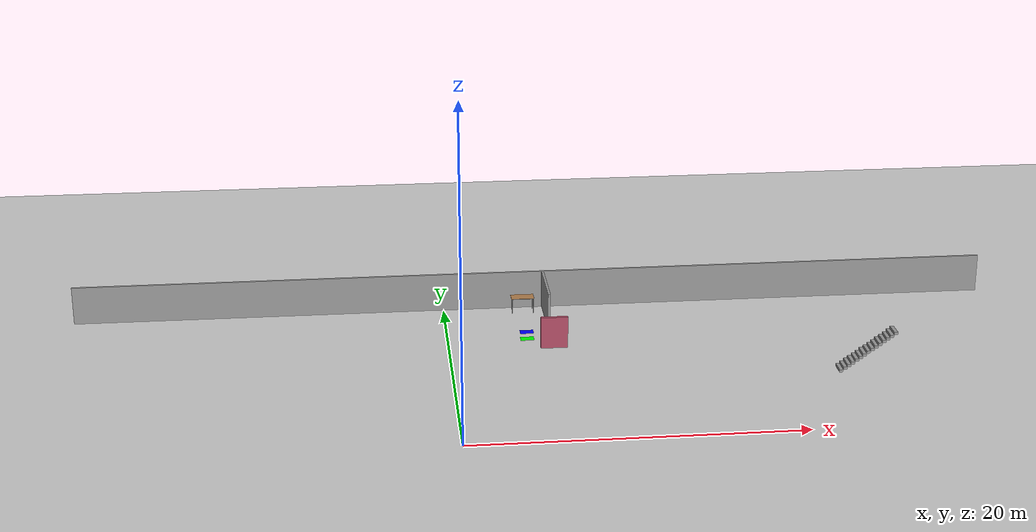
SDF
<sdf version="1.6">
 <world name="default">
  <model name="ground_plane">
   <pose>0 0 0.001 0 -0 0</pose>
   <static>1</static>
   <link name="link">
    <collision name="collision">
     <geometry><plane><normal>0 0 1</normal><size>100 100</size></plane></geometry>
     <surface><friction><ode><mu>100</mu><mu2>50</mu2></ode></friction></surface>
    </collision>
    <visual name="visual">
     <cast_shadows>0</cast_shadows>
     <geometry><plane><normal>0 0 1</normal><size>100 100</size></plane></geometry>
     <material>
      <script><uri>file://media/materials/scripts/gazebo.material</uri><name>Gazebo/Grey</name></script>
     </material>
    </visual>
   </link>
  </model>
  <model name="table_11">
   <static>1</static>
   <link name="link">
    <collision name="surface">
     <pose>0 0 1 0 -0 0</pose>
     <geometry><box><size>1.5 0.8 0.03</size></box></geometry>
     <surface><friction><ode><mu>0.6</mu><mu2>0.6</mu2></ode></friction></surface>
    </collision>
    <visual name="visual1">
     <pose>0 0 1 0 -0 0</pose>
     <geometry><box><size>1.5 0.8 0.03</size></box></geometry>
     <material>
      <script><uri>file://media/materials/scripts/gazebo.material</uri><name>Gazebo/Wood</name></script>
     </material>
    </visual>
    <collision name="front_left_leg">
     <pose>0.68 0.38 0.5 0 -0 0</pose>
     <geometry><cylinder><radius>0.02</radius><length>1</length></cylinder></geometry>
    </collision>
    <visual name="front_left_leg">
     <pose>0.68 0.38 0.5 0 -0 0</pose>
     <geometry><cylinder><radius>0.02</radius><length>1</length></cylinder></geometry>
     <material>
      <script><uri>file://media/materials/scripts/gazebo.material</uri><name>Gazebo/Grey</name></script>
     </material>
    </visual>
    <collision name="front_right_leg">
     <pose>0.68 -0.38 0.5 0 -0 0</pose>
     <geometry><cylinder><radius>0.02</radius><length>1</length></cylinder></geometry>
    </collision>
    <visual name="front_right_leg">
     <pose>0.68 -0.38 0.5 0 -0 0</pose>
     <geometry><cylinder><radius>0.02</radius><length>1</length></cylinder></geometry>
     <material>
      <script><uri>file://media/materials/scripts/gazebo.material</uri><name>Gazebo/Grey</name></script>
     </material>
    </visual>
    <collision name="back_right_leg">
     <pose>-0.68 -0.38 0.5 0 -0 0</pose>
     <geometry><cylinder><radius>0.02</radius><length>1</length></cylinder></geometry>
    </collision>
    <visual name="back_right_leg">
     <pose>-0.68 -0.38 0.5 0 -0 0</pose>
     <geometry><cylinder><radius>0.02</radius><length>1</length></cylinder></geometry>
     <material>
      <script><uri>file://media/materials/scripts/gazebo.material</uri><name>Gazebo/Grey</name></script>
     </material>
    </visual>
    <collision name="back_left_leg">
     <pose>-0.68 0.38 0.5 0 -0 0</pose>
     <geometry><cylinder><radius>0.02</radius><length>1</length></cylinder></geometry>
    </collision>
    <visual name="back_left_leg">
     <pose>-0.68 0.38 0.5 0 -0 0</pose>
     <geometry><cylinder><radius>0.02</radius><length>1</length></cylinder></geometry>
     <material>
      <script><uri>file://media/materials/scripts/gazebo.material</uri><name>Gazebo/Grey</name></script>
     </material>
    </visual>
   </link>
   <pose>5.18073 19.5521 0.001 0 -0 0</pose>
  </model>
  <model name="corridor_11">
   <link name="link">
    <pose>0 0 0.001 0 -0 0</pose>
    <inertial>
     <mass>0.0352517</mass>
     <inertia>
      <ixx>0.00099707</ixx>
      <ixy>0</ixy>
      <ixz>0</ixz>
      <iyy>0.00220147</iyy>
      <iyz>0</iyz>
      <izz>0.0031692</izz>
     </inertia>
     <pose>0 0 0.001 0 -0 0</pose>
    </inertial>
    <visual name="visual">
     <geometry><box><size>0.862743 0.578289 1e-06</size></box></geometry>
     <material>
      <script><name>Gazebo/Grey</name><uri>file://media/materials/scripts/gazebo.material</uri></script>
      <ambient>0 1 0 1</ambient>
      <diffuse>0 1 0 1</diffuse>
      <specular>0 1 0 1</specular>
      <emissive>0 1 0 1</emissive>
      <shader type="vertex"><normal_map>__default__</normal_map></shader>
     </material>
     <pose>0 0 0.001 0 -0 0</pose>
    </visual>
    <collision name="collision">
     <pose>0 0 0.001 0 -0 0</pose>
     <geometry><box><size>0.862743 0.578289 0.000477</size></box></geometry>
     <surface>
      <friction>
       <ode><mu>1</mu><mu2>1</mu2><fdir1>0 0 0</fdir1><slip1>0</slip1><slip2>0</slip2></ode>
       <torsional>
        <coefficient>1</coefficient>
        <patch_radius>0</patch_radius>
        <surface_radius>0</surface_radius>
        <use_patch_radius>1</use_patch_radius>
        <ode><slip>0</slip></ode>
       </torsional>
      </friction>
      <bounce><restitution_coefficient>0</restitution_coefficient><threshold>1e+06</threshold></bounce>
      <contact>
       <collide_without_contact>0</collide_without_contact>
       <collide_without_contact_bitmask>1</collide_without_contact_bitmask>
       <collide_bitmask>1</collide_bitmask>
       <ode>
        <soft_cfm>0</soft_cfm>
        <soft_erp>0.2</soft_erp>
        <kp>1e+13</kp>
        <kd>1</kd>
        <max_vel>0.01</max_vel>
        <min_depth>0</min_depth>
       </ode>
       <bullet>
        <split_impulse>1</split_impulse>
        <split_impulse_penetration_threshold>-0.01</split_impulse_penetration_threshold>
        <soft_cfm>0</soft_cfm>
        <soft_erp>0.2</soft_erp>
        <kp>1e+13</kp>
        <kd>1</kd>
       </bullet>
      </contact>
     </surface>
    </collision>
   </link>
   <static>1</static>
   <pose>5.04547 14.8469 0 0 -0 0</pose>
  </model>
  <model name="intersection_22">
   <link name="link">
    <pose>0 0 0.001 0 -0 0</pose>
    <inertial>
     <mass>0.0352517</mass>
     <inertia>
      <ixx>0.000997067</ixx>
      <ixy>0</ixy>
      <ixz>0</ixz>
      <iyy>0.00220147</iyy>
      <iyz>0</iyz>
      <izz>0.0031692</izz>
     </inertia>
     <pose>0 0 0.001 0 -0 0</pose>
    </inertial>
    <visual name="visual">
     <geometry><box><size>0.862743 0.578289 1e-06</size></box></geometry>
     <material>
      <script><name>Gazebo/Grey</name><uri>file://media/materials/scripts/gazebo.material</uri></script>
      <ambient>0 0 1 1</ambient>
      <diffuse>0 0 1 1</diffuse>
      <specular>0 0 1 1</specular>
      <emissive>0 0 1 1</emissive>
      <shader type="vertex"><normal_map>__default__</normal_map></shader>
     </material>
     <pose>0 0 0.001 0 -0 0</pose>
    </visual>
    <collision name="collision">
     <pose>0 0 0.001 0 -0 0</pose>
     <geometry><box><size>0.862743 0.578289 0.000477</size></box></geometry>
     <surface>
      <friction>
       <ode><mu>1</mu><mu2>1</mu2><fdir1>0 0 0</fdir1><slip1>0</slip1><slip2>0</slip2></ode>
       <torsional>
        <coefficient>1</coefficient>
        <patch_radius>0</patch_radius>
        <surface_radius>0</surface_radius>
        <use_patch_radius>1</use_patch_radius>
        <ode><slip>0</slip></ode>
       </torsional>
      </friction>
      <bounce><restitution_coefficient>0</restitution_coefficient><threshold>1e+06</threshold></bounce>
      <contact>
       <collide_without_contact>0</collide_without_contact>
       <collide_without_contact_bitmask>1</collide_without_contact_bitmask>
       <collide_bitmask>1</collide_bitmask>
       <ode>
        <soft_cfm>0</soft_cfm>
        <soft_erp>0.2</soft_erp>
        <kp>1e+13</kp>
        <kd>1</kd>
        <max_vel>0.01</max_vel>
        <min_depth>0</min_depth>
       </ode>
       <bullet>
        <split_impulse>1</split_impulse>
        <split_impulse_penetration_threshold>-0.01</split_impulse_penetration_threshold>
        <soft_cfm>0</soft_cfm>
        <soft_erp>0.2</soft_erp>
        <kp>1e+13</kp>
        <kd>1</kd>
       </bullet>
      </contact>
     </surface>
    </collision>
   </link>
   <static>1</static>
   <pose>5.11934 15.9528 0 0 -0 0</pose>
  </model>
  <model name="intersection_51">
   <link name="link">
    <pose>0 0 0.001 0 -0 0</pose>
    <inertial>
     <mass>0.0352517</mass>
     <inertia>
      <ixx>0.000997067</ixx>
      <ixy>0</ixy>
      <ixz>0</ixz>
      <iyy>0.00220147</iyy>
      <iyz>0</iyz>
      <izz>0.0031692</izz>
     </inertia>
     <pose>0 0 0.001 0 -0 0</pose>
    </inertial>
    <visual name="visual">
     <geometry><box><size>0.862743 0.578289 1e-06</size></box></geometry>
     <material>
      <script><name>Gazebo/Grey</name><uri>file://media/materials/scripts/gazebo.material</uri></script>
      <ambient>0 0 1 1</ambient>
      <diffuse>0 0 1 1</diffuse>
      <specular>0 0 1 1</specular>
      <emissive>0 0 1 1</emissive>
      <shader type="vertex"><normal_map>__default__</normal_map></shader>
     </material>
     <pose>0 0 0.001 0 -0 0</pose>
    </visual>
    <collision name="collision">
     <pose>0 0 0.001 0 -0 0</pose>
     <geometry><box><size>0.862743 0.578289 0.000477</size></box></geometry>
     <surface>
      <friction>
       <ode><mu>1</mu><mu2>1</mu2><fdir1>0 0 0</fdir1><slip1>0</slip1><slip2>0</slip2></ode>
       <torsional>
        <coefficient>1</coefficient>
        <patch_radius>0</patch_radius>
        <surface_radius>0</surface_radius>
        <use_patch_radius>1</use_patch_radius>
        <ode><slip>0</slip></ode>
       </torsional>
      </friction>
      <bounce><restitution_coefficient>0</restitution_coefficient><threshold>1e+06</threshold></bounce>
      <contact>
       <collide_without_contact>0</collide_without_contact>
       <collide_without_contact_bitmask>1</collide_without_contact_bitmask>
       <collide_bitmask>1</collide_bitmask>
       <ode>
        <soft_cfm>0</soft_cfm>
        <soft_erp>0.2</soft_erp>
        <kp>1e+13</kp>
        <kd>1</kd>
        <max_vel>0.01</max_vel>
        <min_depth>0</min_depth>
       </ode>
       <bullet>
        <split_impulse>1</split_impulse>
        <split_impulse_penetration_threshold>-0.01</split_impulse_penetration_threshold>
        <soft_cfm>0</soft_cfm>
        <soft_erp>0.2</soft_erp>
        <kp>1e+13</kp>
        <kd>1</kd>
       </bullet>
      </contact>
     </surface>
    </collision>
   </link>
   <static>1</static>
   <pose>6.63947 14.8043 0 0 -0 0</pose>
  </model>
  <model name="doorOutside_5">
   <link name="link">
    <pose>0.155539 -0.366282 0.216958 0 -0 0</pose>
    <inertial>
     <mass>2.13199</mass>
     <inertia>
      <ixx>0.452656</ixx>
      <ixy>0</ixy>
      <ixz>0</ixz>
      <iyy>0.796738</iyy>
      <iyz>0</iyz>
      <izz>0.699414</izz>
     </inertia>
    </inertial>
    <visual name="visual">
     <geometry><box><size>1.71368 0.198843 2.05986</size></box></geometry>
     <material>
      <script><name>Gazebo/Grey</name><uri>file://media/materials/scripts/gazebo.material</uri></script>
      <ambient>0.7 0.3 0.4 1</ambient>
      <diffuse>0.7 0.7 0.7 1</diffuse>
      <specular>0.01 0.01 0.01 1</specular>
      <emissive>0 0 0 1</emissive>
      <shader type="vertex"><normal_map>__default__</normal_map></shader>
      <lighting>0</lighting>
     </material>
    </visual>
    <collision name="collision">
     <geometry><box><size>1.71368 0.198843 2.05986</size></box></geometry>
     <surface>
      <friction>
       <ode><mu>1</mu><mu2>1</mu2><fdir1>0 0 0</fdir1><slip1>0</slip1><slip2>0</slip2></ode>
       <torsional>
        <coefficient>1</coefficient>
        <patch_radius>0</patch_radius>
        <surface_radius>0</surface_radius>
        <use_patch_radius>1</use_patch_radius>
        <ode><slip>0</slip></ode>
       </torsional>
      </friction>
      <bounce><restitution_coefficient>0</restitution_coefficient><threshold>1e+06</threshold></bounce>
      <contact>
       <collide_without_contact>0</collide_without_contact>
       <collide_without_contact_bitmask>1</collide_without_contact_bitmask>
       <collide_bitmask>1</collide_bitmask>
       <ode>
        <soft_cfm>0</soft_cfm>
        <soft_erp>0.2</soft_erp>
        <kp>1e+13</kp>
        <kd>1</kd>
        <max_vel>0.01</max_vel>
        <min_depth>0</min_depth>
       </ode>
       <bullet>
        <split_impulse>1</split_impulse>
        <split_impulse_penetration_threshold>-0.01</split_impulse_penetration_threshold>
        <soft_cfm>0</soft_cfm>
        <soft_erp>0.2</soft_erp>
        <kp>1e+13</kp>
        <kd>1</kd>
       </bullet>
      </contact>
     </surface>
    </collision>
   </link>
   <static>0</static>
   <pose>6.45256 13.66 0.812972 0 0 -8.7e-05</pose>
  </model>
  <model name="Se1_cut">
   <pose>3.62364 13.9276 0 0 -0 0</pose>
   <link name="Stairs_1">
    <visual name="Stairs_1_Visual_0">
     <pose>20.036 -5.73074 0.083333 0 -0 1.5708</pose>
     <geometry><box><size>1 0.233333 0.166667</size></box></geometry>
     <material>
      <script><uri>file://media/materials/scripts/gazebo.material</uri><name>Gazebo/Grey</name></script>
      <ambient>1 1 1 1</ambient>
     </material>
    </visual>
    <collision name="Stairs_1_Collision_0">
     <geometry><box><size>1 0.233333 0.166667</size></box></geometry>
     <pose>20.036 -5.73074 0.083333 0 -0 1.5708</pose>
    </collision>
    <visual name="Stairs_1_Visual_1">
     <pose>20.2693 -5.73074 0.25 0 -0 1.5708</pose>
     <geometry><box><size>1 0.233333 0.166667</size></box></geometry>
     <material>
      <script><uri>file://media/materials/scripts/gazebo.material</uri><name>Gazebo/Grey</name></script>
      <ambient>1 1 1 1</ambient>
     </material>
    </visual>
    <collision name="Stairs_1_Collision_1">
     <geometry><box><size>1 0.233333 0.166667</size></box></geometry>
     <pose>20.2693 -5.73074 0.25 0 -0 1.5708</pose>
    </collision>
    <visual name="Stairs_1_Visual_2">
     <pose>20.5026 -5.73074 0.416667 0 -0 1.5708</pose>
     <geometry><box><size>1 0.233333 0.166667</size></box></geometry>
     <material>
      <script><uri>file://media/materials/scripts/gazebo.material</uri><name>Gazebo/Grey</name></script>
      <ambient>1 1 1 1</ambient>
     </material>
    </visual>
    <collision name="Stairs_1_Collision_2">
     <geometry><box><size>1 0.233333 0.166667</size></box></geometry>
     <pose>20.5026 -5.73074 0.416667 0 -0 1.5708</pose>
    </collision>
    <visual name="Stairs_1_Visual_3">
     <pose>20.736 -5.73074 0.583333 0 -0 1.5708</pose>
     <geometry><box><size>1 0.233333 0.166667</size></box></geometry>
     <material>
      <script><uri>file://media/materials/scripts/gazebo.material</uri><name>Gazebo/Grey</name></script>
      <ambient>1 1 1 1</ambient>
     </material>
    </visual>
    <collision name="Stairs_1_Collision_3">
     <geometry><box><size>1 0.233333 0.166667</size></box></geometry>
     <pose>20.736 -5.73074 0.583333 0 -0 1.5708</pose>
    </collision>
    <visual name="Stairs_1_Visual_4">
     <pose>20.9693 -5.73074 0.75 0 -0 1.5708</pose>
     <geometry><box><size>1 0.233333 0.166667</size></box></geometry>
     <material>
      <script><uri>file://media/materials/scripts/gazebo.material</uri><name>Gazebo/Grey</name></script>
      <ambient>1 1 1 1</ambient>
     </material>
    </visual>
    <collision name="Stairs_1_Collision_4">
     <geometry><box><size>1 0.233333 0.166667</size></box></geometry>
     <pose>20.9693 -5.73074 0.75 0 -0 1.5708</pose>
    </collision>
    <visual name="Stairs_1_Visual_5">
     <pose>21.2026 -5.73074 0.916667 0 -0 1.5708</pose>
     <geometry><box><size>1 0.233333 0.166667</size></box></geometry>
     <material>
      <script><uri>file://media/materials/scripts/gazebo.material</uri><name>Gazebo/Grey</name></script>
      <ambient>1 1 1 1</ambient>
     </material>
    </visual>
    <collision name="Stairs_1_Collision_5">
     <geometry><box><size>1 0.233333 0.166667</size></box></geometry>
     <pose>21.2026 -5.73074 0.916667 0 -0 1.5708</pose>
    </collision>
    <visual name="Stairs_1_Visual_6">
     <pose>21.436 -5.73074 1.08333 0 -0 1.5708</pose>
     <geometry><box><size>1 0.233333 0.166667</size></box></geometry>
     <material>
      <script><uri>file://media/materials/scripts/gazebo.material</uri><name>Gazebo/Grey</name></script>
      <ambient>1 1 1 1</ambient>
     </material>
    </visual>
    <collision name="Stairs_1_Collision_6">
     <geometry><box><size>1 0.233333 0.166667</size></box></geometry>
     <pose>21.436 -5.73074 1.08333 0 -0 1.5708</pose>
    </collision>
    <visual name="Stairs_1_Visual_7">
     <pose>21.6693 -5.73074 1.25 0 -0 1.5708</pose>
     <geometry><box><size>1 0.233333 0.166667</size></box></geometry>
     <material>
      <script><uri>file://media/materials/scripts/gazebo.material</uri><name>Gazebo/Grey</name></script>
      <ambient>1 1 1 1</ambient>
     </material>
    </visual>
    <collision name="Stairs_1_Collision_7">
     <geometry><box><size>1 0.233333 0.166667</size></box></geometry>
     <pose>21.6693 -5.73074 1.25 0 -0 1.5708</pose>
    </collision>
    <visual name="Stairs_1_Visual_8">
     <pose>21.9026 -5.73074 1.41667 0 -0 1.5708</pose>
     <geometry><box><size>1 0.233333 0.166667</size></box></geometry>
     <material>
      <script><uri>file://media/materials/scripts/gazebo.material</uri><name>Gazebo/Grey</name></script>
      <ambient>1 1 1 1</ambient>
     </material>
    </visual>
    <collision name="Stairs_1_Collision_8">
     <geometry><box><size>1 0.233333 0.166667</size></box></geometry>
     <pose>21.9026 -5.73074 1.41667 0 -0 1.5708</pose>
    </collision>
    <visual name="Stairs_1_Visual_9">
     <pose>22.136 -5.73074 1.58333 0 -0 1.5708</pose>
     <geometry><box><size>1 0.233333 0.166667</size></box></geometry>
     <material>
      <script><uri>file://media/materials/scripts/gazebo.material</uri><name>Gazebo/Grey</name></script>
      <ambient>1 1 1 1</ambient>
     </material>
    </visual>
    <collision name="Stairs_1_Collision_9">
     <geometry><box><size>1 0.233333 0.166667</size></box></geometry>
     <pose>22.136 -5.73074 1.58333 0 -0 1.5708</pose>
    </collision>
    <visual name="Stairs_1_Visual_10">
     <pose>22.3693 -5.73074 1.75 0 -0 1.5708</pose>
     <geometry><box><size>1 0.233333 0.166667</size></box></geometry>
     <material>
      <script><uri>file://media/materials/scripts/gazebo.material</uri><name>Gazebo/Grey</name></script>
      <ambient>1 1 1 1</ambient>
     </material>
    </visual>
    <collision name="Stairs_1_Collision_10">
     <geometry><box><size>1 0.233333 0.166667</size></box></geometry>
     <pose>22.3693 -5.73074 1.75 0 -0 1.5708</pose>
    </collision>
    <visual name="Stairs_1_Visual_11">
     <pose>22.6026 -5.73074 1.91667 0 -0 1.5708</pose>
     <geometry><box><size>1 0.233333 0.166667</size></box></geometry>
     <material>
      <script><uri>file://media/materials/scripts/gazebo.material</uri><name>Gazebo/Grey</name></script>
      <ambient>1 1 1 1</ambient>
     </material>
    </visual>
    <collision name="Stairs_1_Collision_11">
     <geometry><box><size>1 0.233333 0.166667</size></box></geometry>
     <pose>22.6026 -5.73074 1.91667 0 -0 1.5708</pose>
    </collision>
    <visual name="Stairs_1_Visual_12">
     <pose>22.836 -5.73074 2.08333 0 -0 1.5708</pose>
     <geometry><box><size>1 0.233333 0.166667</size></box></geometry>
     <material>
      <script><uri>file://media/materials/scripts/gazebo.material</uri><name>Gazebo/Grey</name></script>
      <ambient>1 1 1 1</ambient>
     </material>
    </visual>
    <collision name="Stairs_1_Collision_12">
     <geometry><box><size>1 0.233333 0.166667</size></box></geometry>
     <pose>22.836 -5.73074 2.08333 0 -0 1.5708</pose>
    </collision>
    <visual name="Stairs_1_Visual_13">
     <pose>23.0693 -5.73074 2.25 0 -0 1.5708</pose>
     <geometry><box><size>1 0.233333 0.166667</size></box></geometry>
     <material>
      <script><uri>file://media/materials/scripts/gazebo.material</uri><name>Gazebo/Grey</name></script>
      <ambient>1 1 1 1</ambient>
     </material>
    </visual>
    <collision name="Stairs_1_Collision_13">
     <geometry><box><size>1 0.233333 0.166667</size></box></geometry>
     <pose>23.0693 -5.73074 2.25 0 -0 1.5708</pose>
    </collision>
    <visual name="Stairs_1_Visual_14">
     <pose>23.3026 -5.73074 2.41667 0 -0 1.5708</pose>
     <geometry><box><size>1 0.233333 0.166667</size></box></geometry>
     <material>
      <script><uri>file://media/materials/scripts/gazebo.material</uri><name>Gazebo/Grey</name></script>
      <ambient>1 1 1 1</ambient>
     </material>
    </visual>
    <collision name="Stairs_1_Collision_14">
     <geometry><box><size>1 0.233333 0.166667</size></box></geometry>
     <pose>23.3026 -5.73074 2.41667 0 -0 1.5708</pose>
    </collision>
   </link>
   <link name="Wall_5">
    <collision name="Wall_5_Collision">
     <geometry><box><size>60.25 0.15 2.5</size></box></geometry>
     <pose>0 0 1.25 0 -0 0</pose>
    </collision>
    <visual name="Wall_5_Visual">
     <pose>0 0 1.25 0 -0 0</pose>
     <geometry><box><size>60.25 0.15 2.5</size></box></geometry>
     <material>
      <script><uri>file://media/materials/scripts/gazebo.material</uri><name>Gazebo/Grey</name></script>
      <ambient>1 1 1 1</ambient>
     </material>
    </visual>
    <pose>2.46862 6.375 0 0 -0 3.14159</pose>
   </link>
   <link name="Wall_59">
    <collision name="Wall_59_Collision">
     <geometry><box><size>4.25 0.15 2.5</size></box></geometry>
     <pose>0 0 1.25 0 -0 0</pose>
    </collision>
    <visual name="Wall_59_Visual">
     <pose>0 0 1.25 0 -0 0</pose>
     <geometry><box><size>4.25 0.15 2.5</size></box></geometry>
     <material>
      <script><uri>file://media/materials/scripts/gazebo.material</uri><name>Gazebo/Grey</name></script>
      <ambient>1 1 1 1</ambient>
     </material>
    </visual>
    <pose>2.96947 4.24479 0 0 0 -1.5708</pose>
   </link>
   <static>1</static>
  </model>
 </world>
</sdf>
